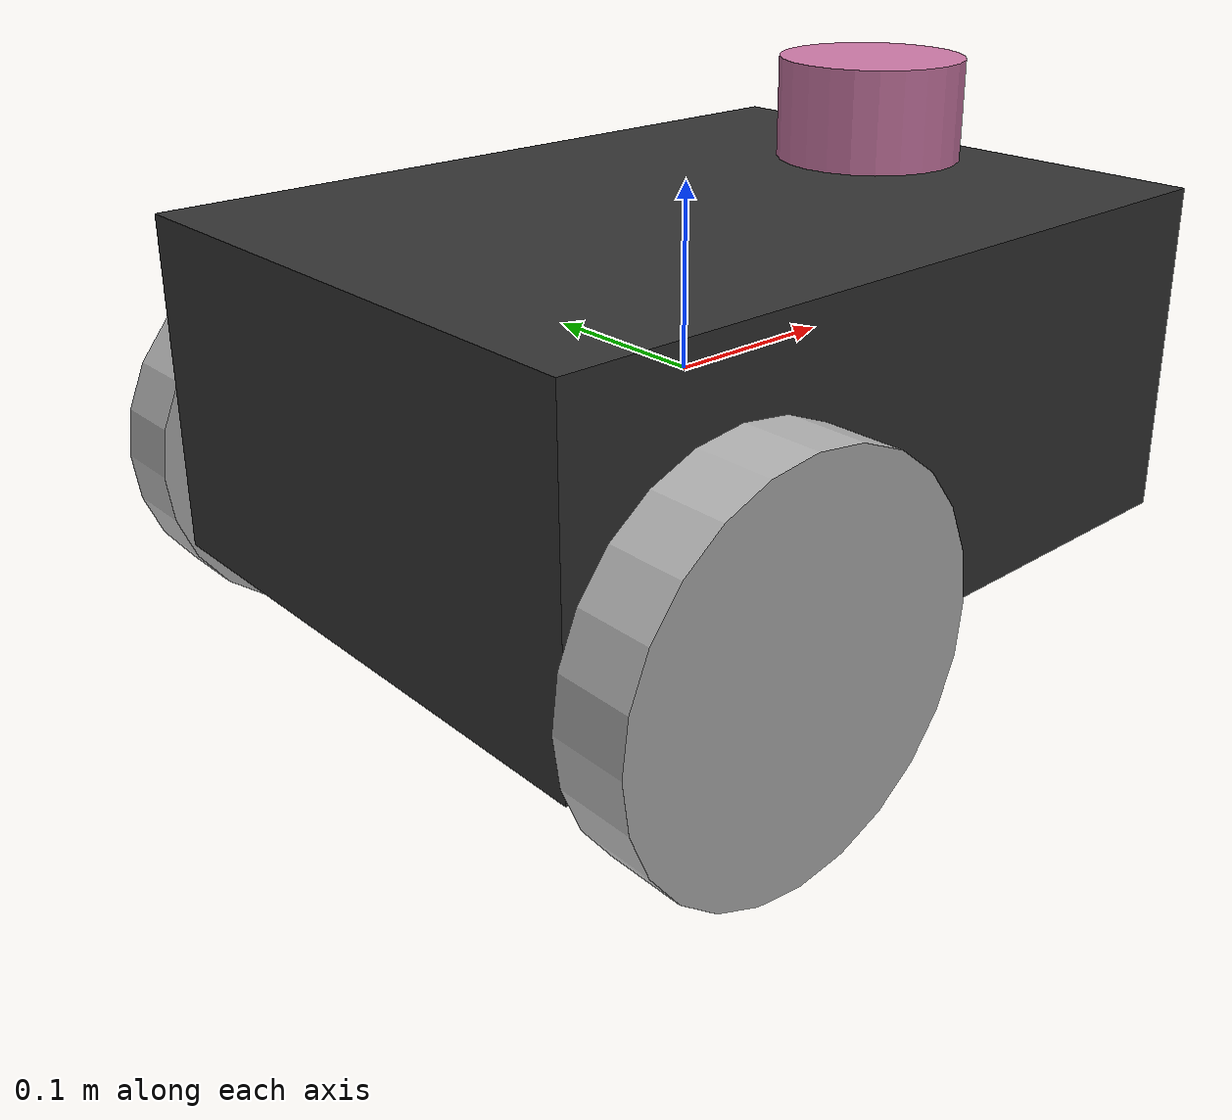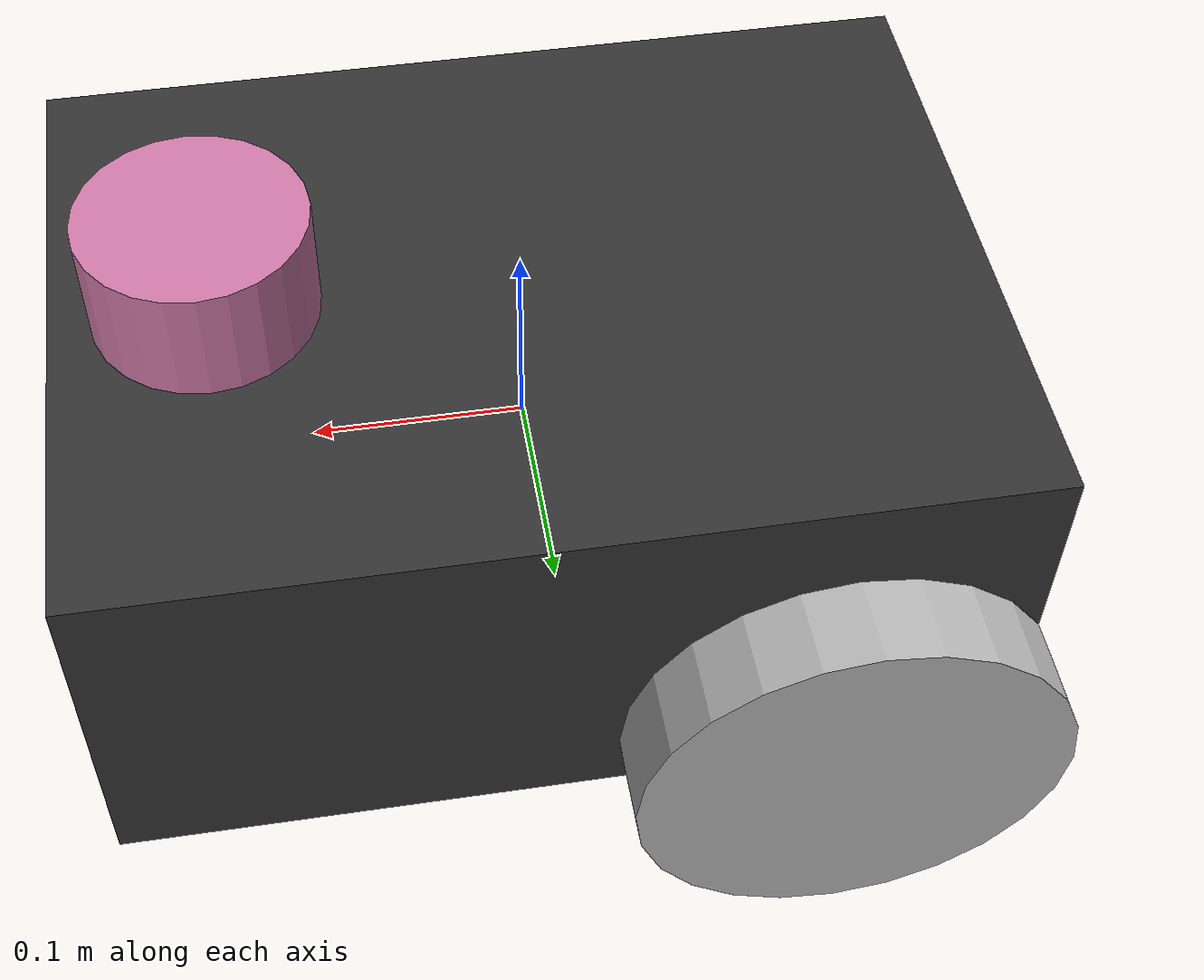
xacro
<?xml version="1.0"?>
<robot name="sonny_base" xmlns:xacro="http://ros.org/wiki/xacro">

  <!-- Include Panda arm macro -->
  <xacro:include filename="$(find sonny_description)/urdf/panda_mount.urdf.xacro"/>

  <!-- =========================
       Constants
  ========================== -->
  <xacro:property name="base_width"  value="0.31"/>
  <xacro:property name="base_length" value="0.42"/>
  <xacro:property name="base_height" value="0.18"/>
  <!-- If you updates this, update mob_base_height in panda_gz_amm.urdf.xacro too  -->

  <xacro:property name="wheel_radius" value="0.10"/>
  <xacro:property name="wheel_width"  value="0.04"/>
  <xacro:property name="wheel_ygap"   value="0.025"/>
  <xacro:property name="wheel_zoff"   value="0.05"/>
  <xacro:property name="wheel_xoff"   value="0.12"/>

  <xacro:property name="caster_xoff" value="0.14"/>

  <!-- =========================
       Inertia helper macros
  ========================== -->
  <xacro:macro name="box_inertia" params="m w h d">
    <inertial>
      <origin xyz="0 0 0" rpy="${pi/2} 0 ${pi/2}"/>
      <mass value="${m}"/>
      <inertia
        ixx="${(m/12) * (h*h + d*d)}"
        ixy="0.0"
        ixz="0.0"
        iyy="${(m/12) * (w*w + d*d)}"
        iyz="0.0"
        izz="${(m/12) * (w*w + h*h)}"/>
    </inertial>
  </xacro:macro>

  <xacro:macro name="cylinder_inertia" params="m r h">
    <inertial>
      <origin xyz="0 0 0" rpy="${pi/2} 0 0"/>
      <mass value="${m}"/>
      <inertia
        ixx="${(m/12) * (3*r*r + h*h)}"
        ixy="0.0"
        ixz="0.0"
        iyy="${(m/12) * (3*r*r + h*h)}"
        iyz="0.0"
        izz="${(m/2) * (r*r)}"/>
    </inertial>
  </xacro:macro>

  <xacro:macro name="sphere_inertia" params="m r">
    <inertial>
      <origin xyz="0 0 0" rpy="0 0 0"/>
      <mass value="${m}"/>
      <inertia
        ixx="${(2/5) * m * (r*r)}"
        ixy="0.0"
        ixz="0.0"
        iyy="${(2/5) * m * (r*r)}"
        iyz="0.0"
        izz="${(2/5) * m * (r*r)}"/>
    </inertial>
  </xacro:macro>

  <!-- =========================
       Base links
  ========================== -->

  <!-- Canonical link (no inertial in original SDF) -->
  <link name="base_link">
    <visual name="base_link_visual">
      <geometry>
        <box size="${base_length} ${base_width} ${base_height}"/>
      </geometry>
      <material name="base_cyan">
        <color rgba="0.2 0.2 0.2 1"/>
      </material>
    </visual>

    <collision name="base_link_collision">
      <geometry>
        <box size="${base_length} ${base_width} ${base_height}"/>
      </geometry>
    </collision>
  </link>

  <!-- Mount Panda on top of the base_link -->

  <!-- Footprint (has inertial in original SDF) -->
  <link name="base_footprint">
    <xacro:box_inertia m="15" w="${base_width}" d="${base_length}" h="${base_height}"/>
  </link>

  <joint name="base_joint" type="fixed">
    <parent link="base_link"/>
    <child  link="base_footprint"/>
    <!-- from pose relative_to="base_link">
         0 0 - (wheel_radius + wheel_zoff) 0 0 0
    -->
    <origin xyz="0 0 ${-(wheel_radius+wheel_zoff)}" rpy="0 0 0"/>
  </joint>

  <!-- =========================
       Wheels (macro)
  ========================== -->
  <xacro:macro name="wheel" params="prefix x_reflect y_reflect">
    <link name="${prefix}_link">
      <visual name="${prefix}_link_visual">
        <!-- original pose: rpy = pi/2,0,0 -->
        <origin xyz="0 0 0" rpy="${pi/2} 0 0"/>
        <geometry>
          <cylinder radius="${wheel_radius}" length="${wheel_width}"/>
        </geometry>
        <material name="${prefix}_gray">
          <color rgba="0.7 0.7 0.7 1.0"/>
        </material>
      </visual>

      <collision name="${prefix}_link_collision">
        <origin xyz="0 0 0" rpy="${pi/2} 0 0"/>
        <geometry>
          <cylinder radius="${wheel_radius}" length="${wheel_width}"/>
        </geometry>
      </collision>

      <xacro:cylinder_inertia m="0.5" r="${wheel_radius}" h="${wheel_width}"/>
    </link>

    <!-- In SDF this is revolute with +/-inf; URDF uses continuous -->
    <joint name="${prefix}_joint" type="continuous">
      <parent link="base_link"/>
      <child  link="${prefix}_link"/>
      <!-- pose relative_to="base_link":
           x_reflect*wheel_xoff,
           y_reflect*(base_width/2 + wheel_ygap),
           -wheel_zoff
      -->
      <origin xyz="${x_reflect*wheel_xoff} ${y_reflect*(base_width/2+wheel_ygap)} ${-wheel_zoff}" rpy="0 0 0"/>
      <axis xyz="0 1 0"/>
    </joint>
  </xacro:macro>

  <!-- Drive wheels (same macros as SDF) -->
  <xacro:wheel prefix="drivewhl_l" x_reflect="-1" y_reflect="1"/>
  <xacro:wheel prefix="drivewhl_r" x_reflect="-1" y_reflect="-1"/>

  <!-- =========================
       Front caster
  ========================== -->
  <link name="front_caster">
    <visual name="front_caster_visual">
      <geometry>
        <sphere radius="${(wheel_radius+wheel_zoff-(base_height/2))}"/>
      </geometry>
      <material name="caster_white">
        <color rgba="1 1 1 1"/>
      </material>
    </visual>

    <collision name="front_caster_collision">
      <geometry>
        <sphere radius="${(wheel_radius+wheel_zoff-(base_height/2))}"/>
      </geometry>
    </collision>

    <xacro:sphere_inertia
      m="0.5"
      r="${(wheel_radius+wheel_zoff-(base_height/2))}"/>
  </link>

  <joint name="caster_joint" type="fixed">
    <parent link="base_link"/>
    <child  link="front_caster"/>
    <!-- pose relative_to="base_link":
         caster_xoff, 0, -(base_height/2)
    -->
    <origin xyz="${caster_xoff} 0.0 ${-(base_height/2)}" rpy="0 0 0"/>
  </joint>

  <!-- =========================
       IMU link
  ========================== -->
  <link name="imu_link">
    <visual name="imu_link_visual">
      <geometry>
        <box size="0.1 0.1 0.1"/>
      </geometry>
    </visual>

    <collision name="imu_link_collision">
      <geometry>
        <box size="0.1 0.1 0.1"/>
      </geometry>
    </collision>

    <xacro:box_inertia m="0.1" w="0.1" d="0.1" h="0.1"/>
  </link>

  <joint name="imu_joint" type="fixed">
    <parent link="base_link"/>
    <child  link="imu_link"/>
    <!-- pose relative_to="base_link">0 0 0.01 0 0 0 -->
    <origin xyz="0 0 0.01" rpy="0 0 0"/>
  </joint>

  <!-- =========================
       LIDAR link
  ========================== -->
  <link name="lidar_link">
    <visual name="lidar_link_visual">
      <geometry>
        <cylinder radius="0.0508" length="0.055"/>
      </geometry>
    </visual>

    <collision name="lidar_link_collision">
      <geometry>
        <cylinder radius="0.0508" length="0.055"/>
      </geometry>
    </collision>

    <xacro:cylinder_inertia m="0.125" r="0.0508" h="0.055"/>
  </link>

  <joint name="lidar_joint" type="fixed">
    <parent link="base_link"/>
    <child  link="lidar_link"/>
    <!-- pose relative_to="base_link">0 0 0.12 0 0 0 -->
    <origin xyz="${caster_xoff} 0 0.12" rpy="0 0 0"/>
  </joint>

  <!-- =========================
       Gazebo extensions
       (sensors + system plugins)
  ========================== -->

  <!-- IMU sensor on imu_link -->
  <gazebo reference="imu_link">
    <sensor name="imu_sensor" type="imu">
      <always_on>true</always_on>
      <update_rate>100</update_rate>
      <visualize>true</visualize>
      <topic>demo/imu</topic>
      <gz_frame_id>imu_link</gz_frame_id>
      <imu>
        <angular_velocity>
          <x>
            <noise type="gaussian">
              <mean>0.0</mean>
              <stddev>2e-4</stddev>
              <bias_mean>0.0000075</bias_mean>
              <bias_stddev>0.0000008</bias_stddev>
            </noise>
          </x>
          <y>
            <noise type="gaussian">
              <mean>0.0</mean>
              <stddev>2e-4</stddev>
              <bias_mean>0.0000075</bias_mean>
              <bias_stddev>0.0000008</bias_stddev>
            </noise>
          </y>
          <z>
            <noise type="gaussian">
              <mean>0.0</mean>
              <stddev>2e-4</stddev>
              <bias_mean>0.0000075</bias_mean>
              <bias_stddev>0.0000008</bias_stddev>
            </noise>
          </z>
        </angular_velocity>
        <linear_acceleration>
          <x>
            <noise type="gaussian">
              <mean>0.0</mean>
              <stddev>1.7e-2</stddev>
              <bias_mean>0.1</bias_mean>
              <bias_stddev>0.001</bias_stddev>
            </noise>
          </x>
          <y>
            <noise type="gaussian">
              <mean>0.0</mean>
              <stddev>1.7e-2</stddev>
              <bias_mean>0.1</bias_mean>
              <bias_stddev>0.001</bias_stddev>
            </noise>
          </y>
          <z>
            <noise type="gaussian">
              <mean>0.0</mean>
              <stddev>1.7e-2</stddev>
              <bias_mean>0.1</bias_mean>
              <bias_stddev>0.001</bias_stddev>
            </noise>
          </z>
        </linear_acceleration>
      </imu>
    </sensor>
  </gazebo>

  <!-- LIDAR sensor on lidar_link -->
  <gazebo reference="lidar_link">
    <sensor name="lidar" type="gpu_lidar">
      <always_on>true</always_on>
      <visualize>true</visualize>
      <update_rate>5</update_rate>
      <topic>scan</topic>
      <gz_frame_id>lidar_link</gz_frame_id>
      <lidar>
        <scan>
          <horizontal>
            <samples>360</samples>
            <resolution>1.000000</resolution>
            <min_angle>0.000000</min_angle>
            <max_angle>6.280000</max_angle>
          </horizontal>
        </scan>
        <range>
          <min>0.120000</min>
          <max>3.5</max>
          <resolution>0.015000</resolution>
        </range>
        <noise>
          <type>gaussian</type>
          <mean>0.0</mean>
          <stddev>0.01</stddev>
        </noise>
      </lidar>
    </sensor>
  </gazebo>

  <!-- Model-level Gazebo system plugins -->
  <gazebo>
    <!-- Diff drive (gz-sim system plugin, copied from SDF) -->

      <!-- limits: tune these -->

      <!-- key for “easier to move”: higher accel -->

    <!-- Joint state publisher system -->
    <plugin
        filename="gz-sim-joint-state-publisher-system"
        name="gz::sim::systems::JointStatePublisher">
      <topic>joint_states</topic>
    </plugin>
  </gazebo>

</robot>
